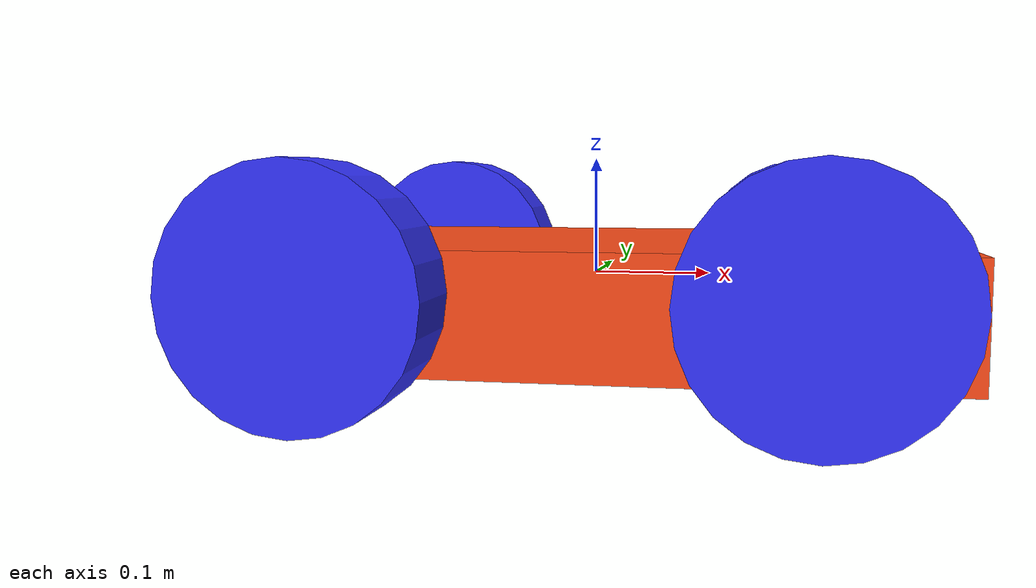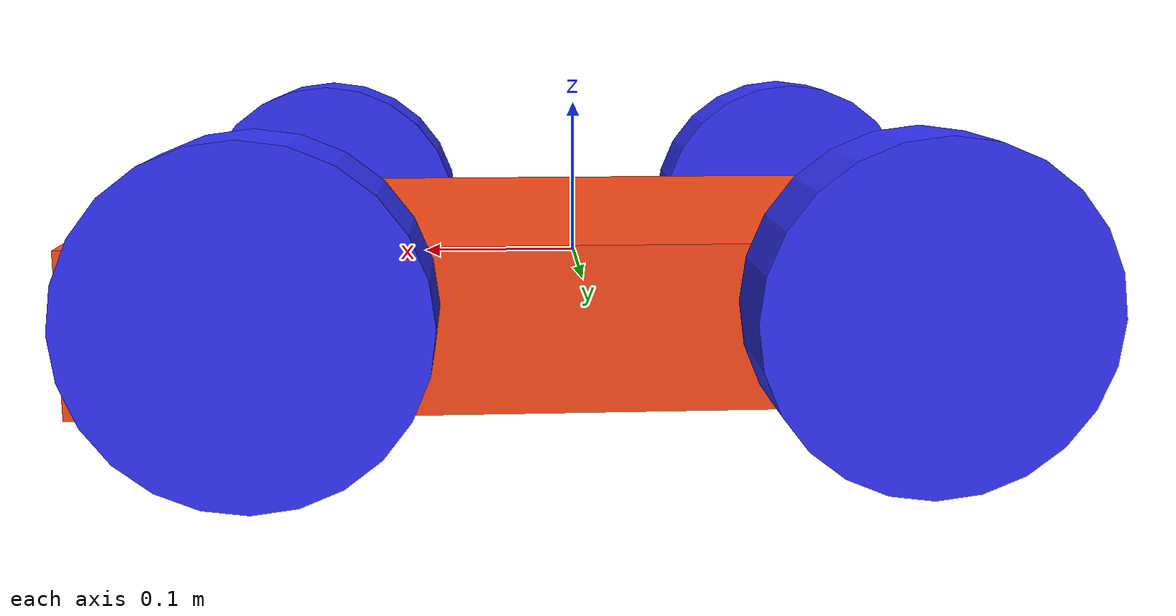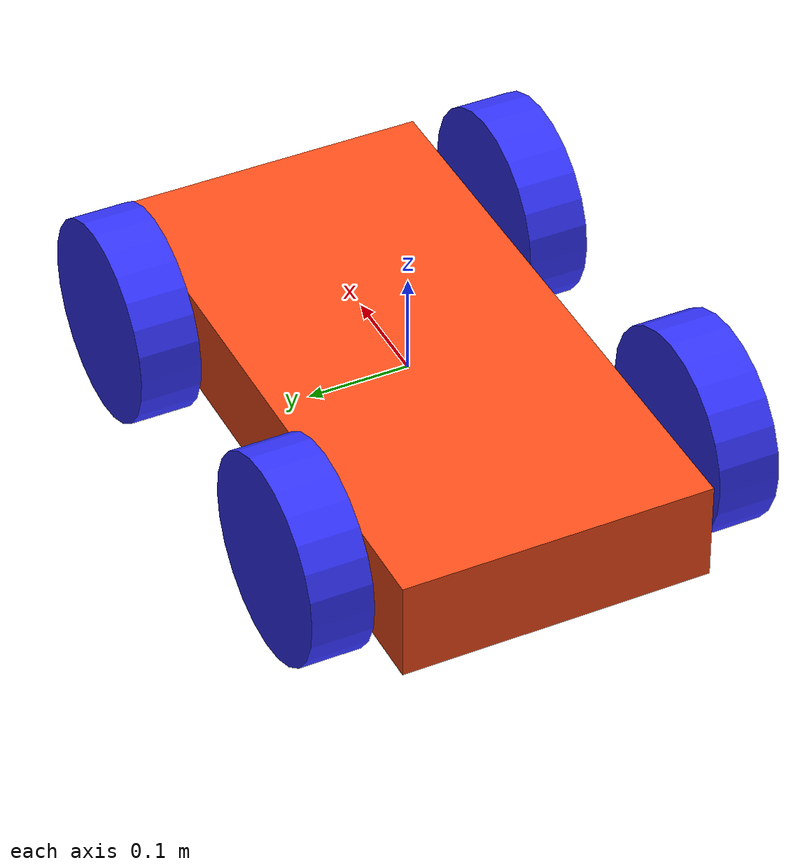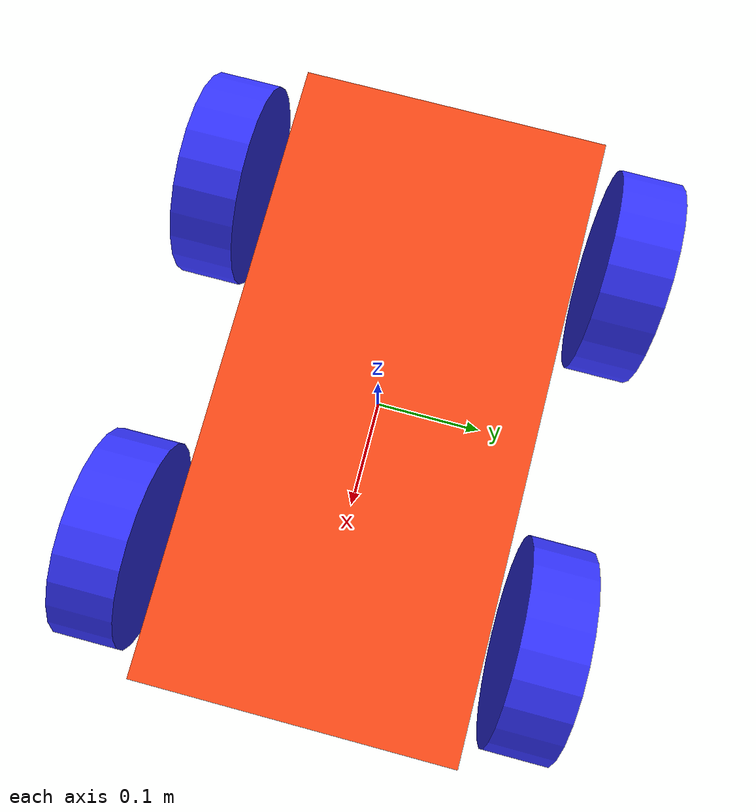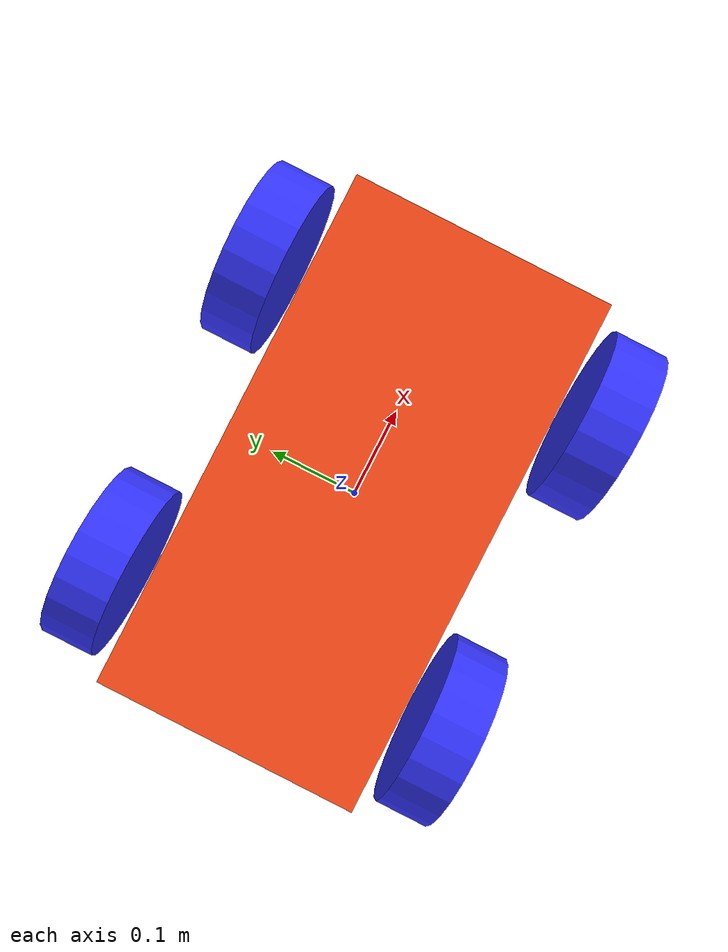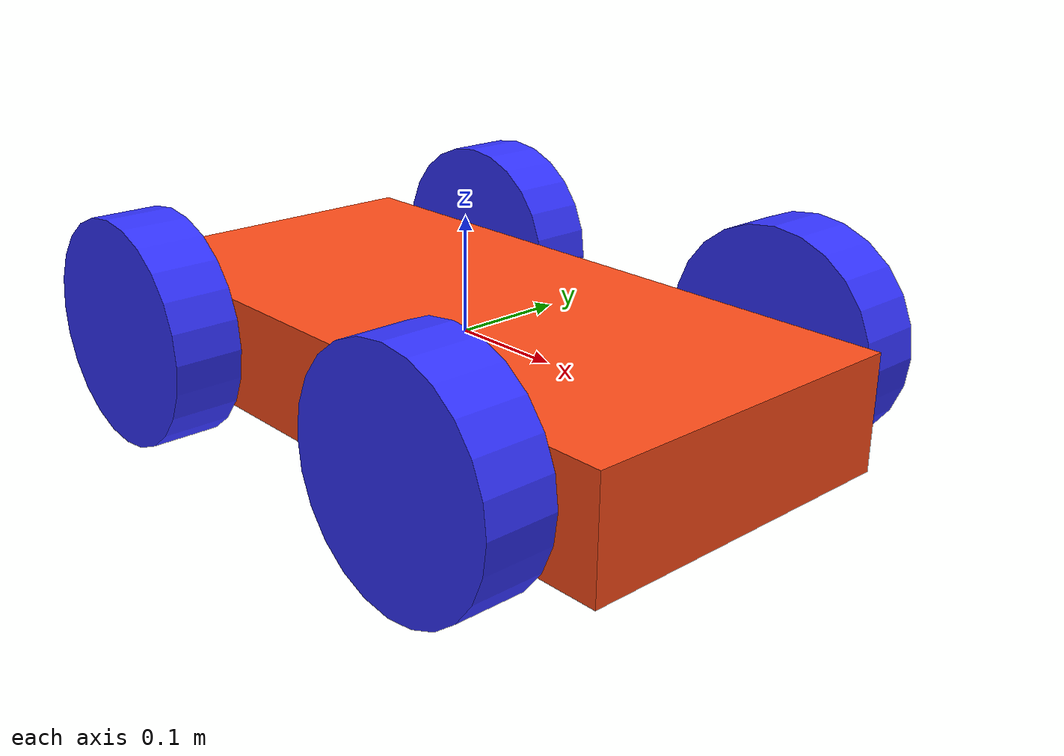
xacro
<?xml version="1.0"?>
<robot xmlns:xacro="http://www.ros.org/wiki/xacro" >

    <xacro:include filename="inertial_macros.xacro"/>

    <xacro:property name="chassis_length" value="0.607"/>
    <xacro:property name="chassis_width" value="0.305"/>
    <xacro:property name="chassis_height" value="0.1"/>
    <xacro:property name="chassis_mass" value="1.0"/>
    <xacro:property name="wheel_radius" value="0.1"/>
    <xacro:property name="wheel_thickness" value="0.06"/>
    <xacro:property name="wheel_mass" value="0.05"/>
    <xacro:property name="wheel_offset_x" value="0.37"/>
    <xacro:property name="wheel_offset_y" value="0.2"/>
    <xacro:property name="wheel_offset_z" value="0.07"/>
    <xacro:property name="caster_wheel_radius" value="0.01"/>
    <xacro:property name="caster_wheel_mass" value="0.01"/>
    <xacro:property name="caster_wheel_offset_x" value="0.075"/>
    <xacro:property name="caster_wheel_offset_z" value="${wheel_offset_z - wheel_radius + caster_wheel_radius}"/>

    <material name="white">
        <color rgba="1 1 1 1" />
    </material>

    <material name="orange">
        <color rgba="1 0.3 0.1 1"/>
    </material>

    <material name="blue">
        <color rgba="0.2 0.2 1 1"/>
    </material>

    <material name="black">
        <color rgba="0 0 0 1"/>
    </material>

    <material name="red">
        <color rgba="1 0 0 1"/>
    </material>

    <!-- BASE LINK -->

    <link name="base_link">

    </link>

    <!-- BASE_FOOTPRINT LINK -->

    <joint name="base_footprint_joint" type="fixed">
        <parent link="base_link"/>
        <child link="base_footprint"/>
        <origin xyz="0 0 0" rpy="0 0 0"/>
    </joint>

    <link name="base_footprint">
    </link>

    <!-- CHASSIS LINK -->

    <joint name="chassis_joint" type="fixed">
        <parent link="base_link"/>
        <child link="chassis"/>
        <origin xyz="0 0 ${-wheel_offset_z}"/>
    </joint>

    <link name="chassis">
        <visual>
            <origin xyz="0 0 ${chassis_height/2}"/>
            <geometry>
                <box size="${chassis_length} ${chassis_width} ${chassis_height}"/>
            </geometry>
            <material name="orange"/>
        </visual>
        <collision>
            <origin xyz="0 0 ${chassis_height/2}"/>
            <geometry>
                <box size="${chassis_length} ${chassis_width} ${chassis_height}"/>
            </geometry>
        </collision>
        <xacro:inertial_box mass="0.5" x="${chassis_length}" y="${chassis_width}" z="${chassis_height}">
            <origin xyz="0 0 ${chassis_height/2}" rpy="0 0 0"/>
        </xacro:inertial_box>
    </link>

    <gazebo reference="chassis">
        <material>Gazebo/Orange</material>
    </gazebo>

    <!-- LEFT WHEEL LINK -->

    <joint name="left_wheel_joint" type="revolute">
        <parent link="base_link"/>
        <child link="left_wheel"/>
        <origin xyz="${wheel_offset_x/2} ${wheel_offset_y} 0" rpy="-${pi/2} 0 0" />
        <axis xyz="0 0 1"/>
        <limit lower="-90000000000*pi" upper="90000000000*pi" effort="100" velocity="0.5"/>
    </joint>

    <link name="left_wheel">
        <visual>
            <geometry>
                <cylinder radius="${wheel_radius}" length="${wheel_thickness}"/>
            </geometry>
            <material name="blue"/>
        </visual>
        <collision>
            <geometry>
                <sphere radius="${wheel_radius}"/>
            </geometry>
        </collision>
        <xacro:inertial_cylinder mass="${wheel_mass}" length="${wheel_thickness}" radius="${wheel_radius}">
            <origin xyz="0 0 0" rpy="0 0 0"/>
        </xacro:inertial_cylinder>
    </link>

    <gazebo reference="left_wheel">
        <material>Gazebo/Blue</material>
        <selfCollide>false</selfCollide>
        <mu1 value="0.5"/>
        <mu2 value="0.5"/>
        <kp value="10000000.0" />
        <kd value="1" />
        <fdir1 value="1 0 0"/>
    </gazebo>

    <!-- RIGHT WHEEL LINK -->

    <joint name="right_wheel_joint" type="revolute">
        <parent link="base_link"/>
        <child link="right_wheel"/>
        <origin xyz="${wheel_offset_x/2} ${-wheel_offset_y} 0" rpy="${pi/2} 0 0" />
        <axis xyz="0 0 -1"/>
        <limit lower="-90000000000*pi" upper="90000000000*pi" effort="100" velocity="0.5"/>
    </joint>

    <link name="right_wheel">
        <visual>
            <geometry>
                <cylinder radius="${wheel_radius}" length="${wheel_thickness}"/>
            </geometry>
            <material name="blue"/>
        </visual>
        <collision>
            <geometry>
                <sphere radius="${wheel_radius}"/>
            </geometry>
        </collision>
        <xacro:inertial_cylinder mass="${wheel_mass}" length="${wheel_thickness}" radius="${wheel_radius}">
            <origin xyz="0 0 0" rpy="0 0 0"/>
        </xacro:inertial_cylinder>
    </link>

    <gazebo reference="right_wheel">
        <material>Gazebo/Blue</material>
        <selfCollide>false</selfCollide>
        <mu1 value="0.5"/>
        <mu2 value="0.5"/>
        <kp value="10000000.0" />
        <kd value="1" />
        <fdir1 value="1 0 0"/>
    </gazebo>

    <!-- REAR LEFT WHEEL LINK -->

    <joint name="rear_left_wheel_joint" type="revolute">
        <parent link="base_link"/>
        <child link="rear_left_wheel"/>
        <origin xyz="${-wheel_offset_x/2} ${wheel_offset_y} 0" rpy="-${pi/2} 0 0" />
        <axis xyz="0 0 1"/>
        <limit lower="-90000000000*pi" upper="90000000000*pi" effort="100" velocity="0.5"/>
        <mimic joint="left_wheel_joint" multiplier="1.0" offset="0.0"/>
    </joint>

    <link name="rear_left_wheel">
        <visual>
            <geometry>
                <cylinder radius="${wheel_radius}" length="${wheel_thickness}"/>
            </geometry>
            <material name="blue"/>
        </visual>
        <collision>
            <geometry>
                <sphere radius="${wheel_radius}"/>
            </geometry>
        </collision>
        <xacro:inertial_cylinder mass="${wheel_mass}" length="${wheel_thickness}" radius="${wheel_radius}">
            <origin xyz="0 0 0" rpy="0 0 0"/>
        </xacro:inertial_cylinder>
    </link>

    <gazebo reference="rear_left_wheel">
        <material>Gazebo/Blue</material>
        <selfCollide>false</selfCollide>
        <mu1 value="0.5"/>
        <mu2 value="0.5"/>
        <kp value="10000000.0" />
        <kd value="1" />
        <fdir1 value="1 0 0"/>
    </gazebo>

    <!-- REAR RIGHT WHEEL LINK -->

    <joint name="rear_right_wheel_joint" type="revolute">
        <parent link="base_link"/>
        <child link="rear_right_wheel"/>
        <origin xyz="${-wheel_offset_x/2} ${-wheel_offset_y} 0" rpy="${pi/2} 0 0" />
        <axis xyz="0 0 -1"/>
        <limit lower="-90000000000*pi" upper="90000000000*pi" effort="100" velocity="0.5"/>
        <mimic joint="right_wheel_joint" multiplier="1.0" offset="0.0"/>
    </joint>

    <link name="rear_right_wheel">
        <visual>
            <geometry>
                <cylinder radius="${wheel_radius}" length="${wheel_thickness}"/>
            </geometry>
            <material name="blue"/>
        </visual>
        <collision>
            <geometry>
                <sphere radius="${wheel_radius}"/>
            </geometry>
        </collision>
        <xacro:inertial_cylinder mass="${wheel_mass}" length="${wheel_thickness}" radius="${wheel_radius}">
            <origin xyz="0 0 0" rpy="0 0 0"/>
        </xacro:inertial_cylinder>
    </link>

    <gazebo reference="rear_right_wheel">
        <material>Gazebo/Blue</material>
        <selfCollide>false</selfCollide>
        <mu1 value="0.5"/>
        <mu2 value="0.5"/>
        <kp value="10000000.0" />
        <kd value="1" />
        <fdir1 value="1 0 0"/>
    </gazebo>

    <!-- CASTER WHEEL LINK -->

</robot>
